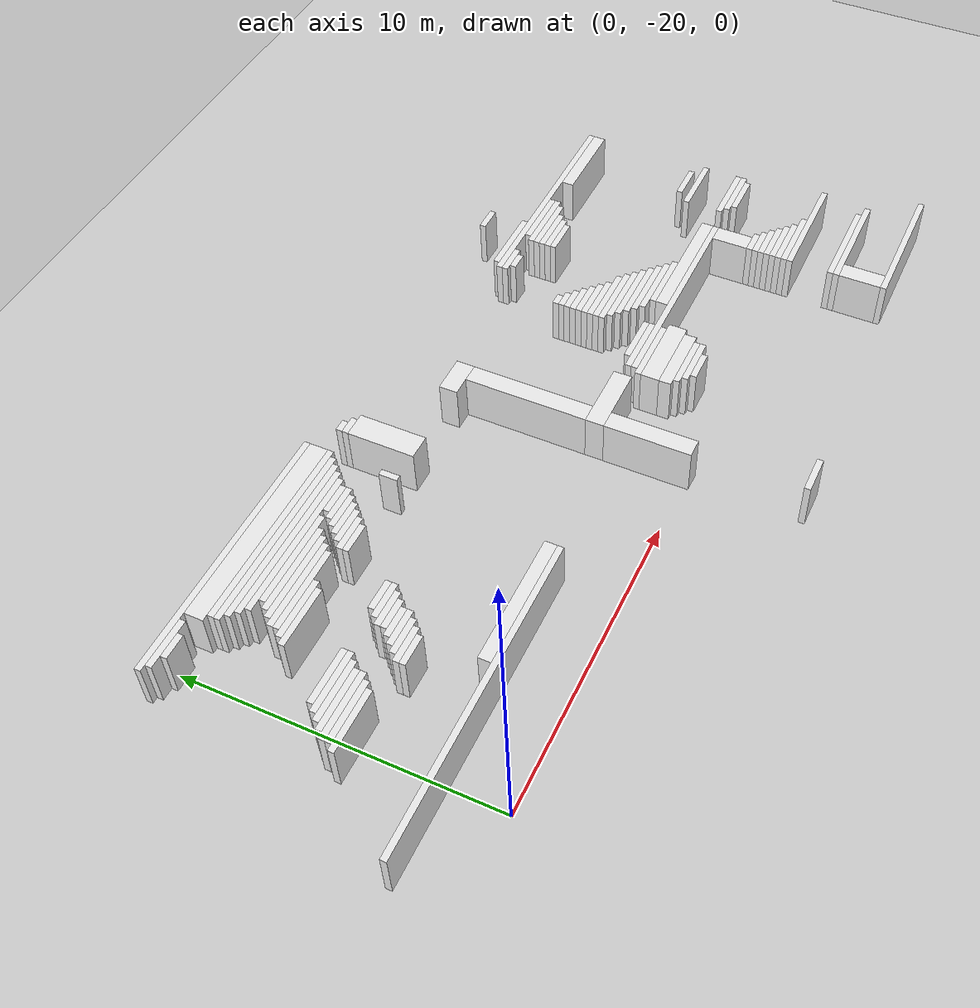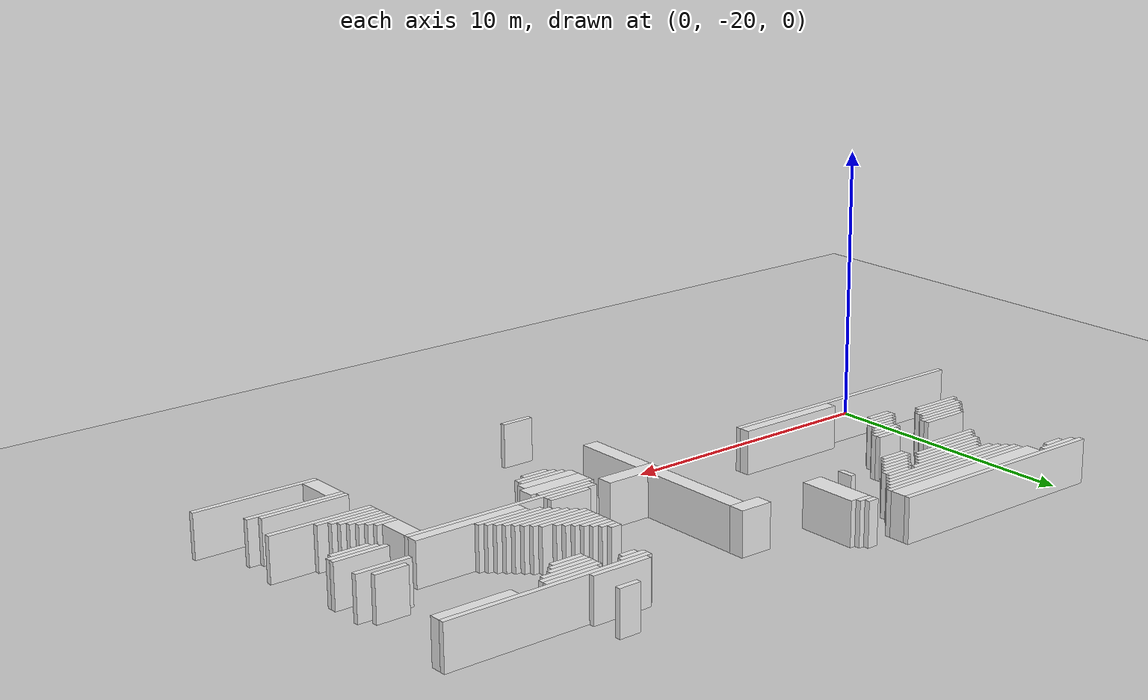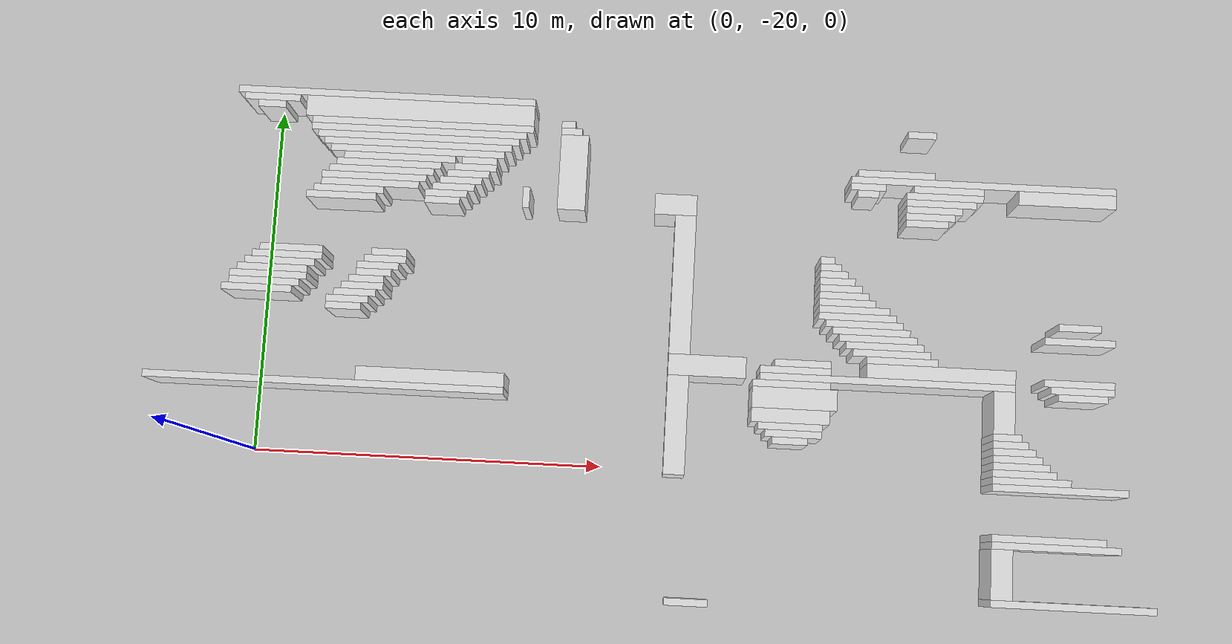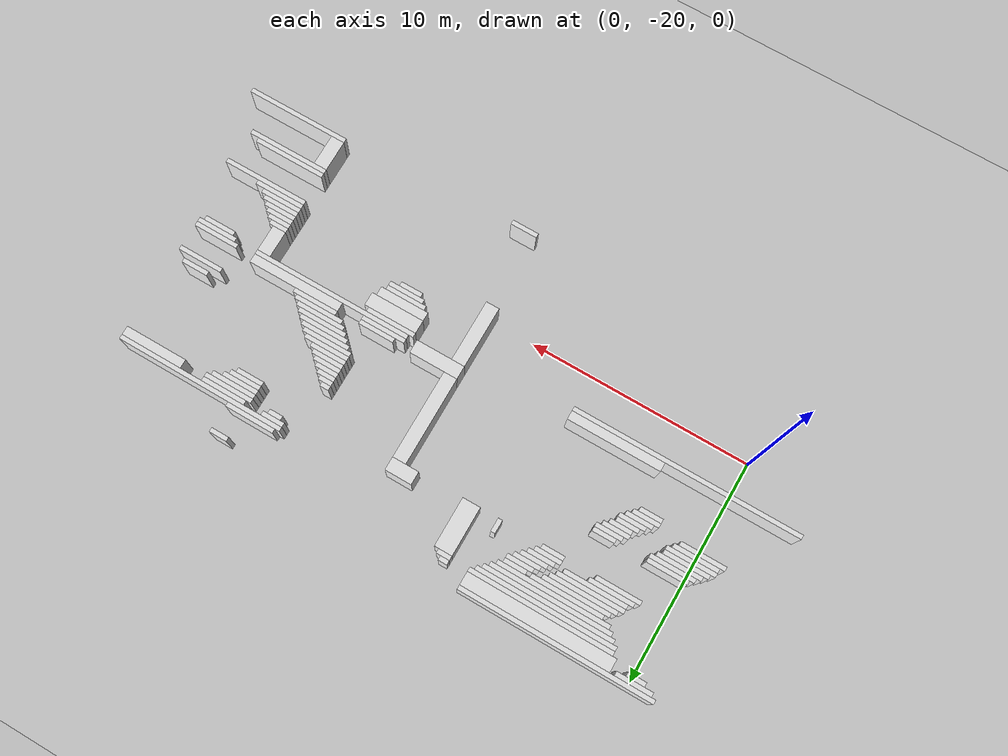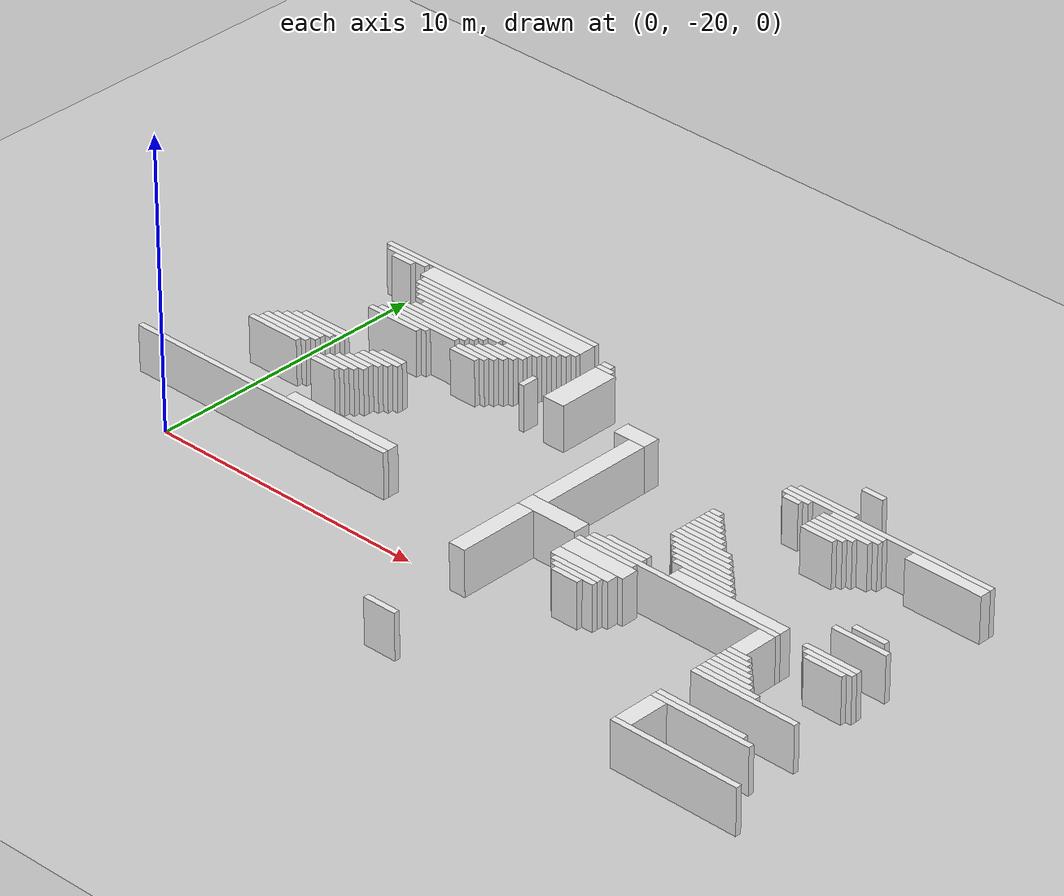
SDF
<sdf version="1.7">
 <world name="default">
  <model name="ground_plane">
   <static>1</static>
   <link name="link">
    <collision name="collision">
     <geometry><plane><normal>0 0 1</normal><size>120 120</size></plane></geometry>
    </collision>
    <visual name="visual">
     <geometry><plane><normal>0 0 1</normal><size>120 120</size></plane></geometry>
     <material>
      <script><uri>file://media/materials/scripts/gazebo.material</uri><name>Gazebo/Grey</name></script>
     </material>
    </visual>
   </link>
  </model>
  <model name="random_complex_02_model">
   <static>1</static>
   <link name="obs_2348">
    <pose>3.3000 -9.7000 0.8000 0 0 0</pose>
    <collision name="obs_2348_col"><geometry><box><size>8.6000 0.2000 1.6000</size></box></geometry></collision>
    <visual name="obs_2348_vis">
     <geometry><box><size>8.6000 0.2000 1.6000</size></box></geometry>
     <material>
      <script><uri>file://media/materials/scripts/gazebo.material</uri><name>Gazebo/White</name></script>
     </material>
    </visual>
   </link>
   <link name="obs_2354">
    <pose>0.0000 -9.9000 0.8000 0 0 0</pose>
    <collision name="obs_2354_col"><geometry><box><size>1.6000 0.2000 1.6000</size></box></geometry></collision>
    <visual name="obs_2354_vis">
     <geometry><box><size>1.6000 0.2000 1.6000</size></box></geometry>
     <material>
      <script><uri>file://media/materials/scripts/gazebo.material</uri><name>Gazebo/White</name></script>
     </material>
    </visual>
   </link>
   <link name="obs_2360">
    <pose>0.0000 -10.1000 0.8000 0 0 0</pose>
    <collision name="obs_2360_col"><geometry><box><size>0.8000 0.2000 1.6000</size></box></geometry></collision>
    <visual name="obs_2360_vis">
     <geometry><box><size>0.8000 0.2000 1.6000</size></box></geometry>
     <material>
      <script><uri>file://media/materials/scripts/gazebo.material</uri><name>Gazebo/White</name></script>
     </material>
    </visual>
   </link>
   <link name="obs_2361">
    <pose>18.8000 -10.1000 0.8000 0 0 0</pose>
    <collision name="obs_2361_col"><geometry><box><size>0.8000 0.2000 1.6000</size></box></geometry></collision>
    <visual name="obs_2361_vis">
     <geometry><box><size>0.8000 0.2000 1.6000</size></box></geometry>
     <material>
      <script><uri>file://media/materials/scripts/gazebo.material</uri><name>Gazebo/White</name></script>
     </material>
    </visual>
   </link>
   <link name="obs_2363">
    <pose>4.3000 -10.1000 0.8000 0 0 0</pose>
    <collision name="obs_2363_col"><geometry><box><size>6.6000 0.6000 1.6000</size></box></geometry></collision>
    <visual name="obs_2363_vis">
     <geometry><box><size>6.6000 0.6000 1.6000</size></box></geometry>
     <material>
      <script><uri>file://media/materials/scripts/gazebo.material</uri><name>Gazebo/White</name></script>
     </material>
    </visual>
   </link>
   <link name="obs_2366">
    <pose>8.6000 -10.3000 0.8000 0 0 0</pose>
    <collision name="obs_2366_col"><geometry><box><size>0.4000 0.2000 1.6000</size></box></geometry></collision>
    <visual name="obs_2366_vis">
     <geometry><box><size>0.4000 0.2000 1.6000</size></box></geometry>
     <material>
      <script><uri>file://media/materials/scripts/gazebo.material</uri><name>Gazebo/White</name></script>
     </material>
    </visual>
   </link>
   <link name="obs_2373">
    <pose>4.4000 -10.5000 0.8000 0 0 0</pose>
    <collision name="obs_2373_col"><geometry><box><size>6.4000 0.2000 1.6000</size></box></geometry></collision>
    <visual name="obs_2373_vis">
     <geometry><box><size>6.4000 0.2000 1.6000</size></box></geometry>
     <material>
      <script><uri>file://media/materials/scripts/gazebo.material</uri><name>Gazebo/White</name></script>
     </material>
    </visual>
   </link>
   <link name="obs_2374">
    <pose>8.7000 -10.5000 0.8000 0 0 0</pose>
    <collision name="obs_2374_col"><geometry><box><size>0.6000 0.2000 1.6000</size></box></geometry></collision>
    <visual name="obs_2374_vis">
     <geometry><box><size>0.6000 0.2000 1.6000</size></box></geometry>
     <material>
      <script><uri>file://media/materials/scripts/gazebo.material</uri><name>Gazebo/White</name></script>
     </material>
    </visual>
   </link>
   <link name="obs_2380">
    <pose>4.3000 -10.7000 0.8000 0 0 0</pose>
    <collision name="obs_2380_col"><geometry><box><size>6.2000 0.2000 1.6000</size></box></geometry></collision>
    <visual name="obs_2380_vis">
     <geometry><box><size>6.2000 0.2000 1.6000</size></box></geometry>
     <material>
      <script><uri>file://media/materials/scripts/gazebo.material</uri><name>Gazebo/White</name></script>
     </material>
    </visual>
   </link>
   <link name="obs_2384">
    <pose>4.3000 -10.9000 0.8000 0 0 0</pose>
    <collision name="obs_2384_col"><geometry><box><size>5.8000 0.2000 1.6000</size></box></geometry></collision>
    <visual name="obs_2384_vis">
     <geometry><box><size>5.8000 0.2000 1.6000</size></box></geometry>
     <material>
      <script><uri>file://media/materials/scripts/gazebo.material</uri><name>Gazebo/White</name></script>
     </material>
    </visual>
   </link>
   <link name="obs_2391">
    <pose>4.3000 -11.1000 0.8000 0 0 0</pose>
    <collision name="obs_2391_col"><geometry><box><size>5.4000 0.2000 1.6000</size></box></geometry></collision>
    <visual name="obs_2391_vis">
     <geometry><box><size>5.4000 0.2000 1.6000</size></box></geometry>
     <material>
      <script><uri>file://media/materials/scripts/gazebo.material</uri><name>Gazebo/White</name></script>
     </material>
    </visual>
   </link>
   <link name="obs_2396">
    <pose>4.3000 -11.3000 0.8000 0 0 0</pose>
    <collision name="obs_2396_col"><geometry><box><size>5.0000 0.2000 1.6000</size></box></geometry></collision>
    <visual name="obs_2396_vis">
     <geometry><box><size>5.0000 0.2000 1.6000</size></box></geometry>
     <material>
      <script><uri>file://media/materials/scripts/gazebo.material</uri><name>Gazebo/White</name></script>
     </material>
    </visual>
   </link>
   <link name="obs_2397">
    <pose>18.1000 -11.3000 0.8000 0 0 0</pose>
    <collision name="obs_2397_col"><geometry><box><size>2.2000 0.2000 1.6000</size></box></geometry></collision>
    <visual name="obs_2397_vis">
     <geometry><box><size>2.2000 0.2000 1.6000</size></box></geometry>
     <material>
      <script><uri>file://media/materials/scripts/gazebo.material</uri><name>Gazebo/White</name></script>
     </material>
    </visual>
   </link>
   <link name="obs_2403">
    <pose>3.8000 -11.5000 0.8000 0 0 0</pose>
    <collision name="obs_2403_col"><geometry><box><size>3.2000 0.2000 1.6000</size></box></geometry></collision>
    <visual name="obs_2403_vis">
     <geometry><box><size>3.2000 0.2000 1.6000</size></box></geometry>
     <material>
      <script><uri>file://media/materials/scripts/gazebo.material</uri><name>Gazebo/White</name></script>
     </material>
    </visual>
   </link>
   <link name="obs_2404">
    <pose>6.1000 -11.5000 0.8000 0 0 0</pose>
    <collision name="obs_2404_col"><geometry><box><size>1.0000 0.2000 1.6000</size></box></geometry></collision>
    <visual name="obs_2404_vis">
     <geometry><box><size>1.0000 0.2000 1.6000</size></box></geometry>
     <material>
      <script><uri>file://media/materials/scripts/gazebo.material</uri><name>Gazebo/White</name></script>
     </material>
    </visual>
   </link>
   <link name="obs_2405">
    <pose>20.6000 -11.5000 0.8000 0 0 0</pose>
    <collision name="obs_2405_col"><geometry><box><size>7.6000 0.2000 1.6000</size></box></geometry></collision>
    <visual name="obs_2405_vis">
     <geometry><box><size>7.6000 0.2000 1.6000</size></box></geometry>
     <material>
      <script><uri>file://media/materials/scripts/gazebo.material</uri><name>Gazebo/White</name></script>
     </material>
    </visual>
   </link>
   <link name="obs_2410">
    <pose>3.5000 -11.7000 0.8000 0 0 0</pose>
    <collision name="obs_2410_col"><geometry><box><size>3.0000 0.2000 1.6000</size></box></geometry></collision>
    <visual name="obs_2410_vis">
     <geometry><box><size>3.0000 0.2000 1.6000</size></box></geometry>
     <material>
      <script><uri>file://media/materials/scripts/gazebo.material</uri><name>Gazebo/White</name></script>
     </material>
    </visual>
   </link>
   <link name="obs_2411">
    <pose>6.0000 -11.7000 0.8000 0 0 0</pose>
    <collision name="obs_2411_col"><geometry><box><size>1.2000 0.2000 1.6000</size></box></geometry></collision>
    <visual name="obs_2411_vis">
     <geometry><box><size>1.2000 0.2000 1.6000</size></box></geometry>
     <material>
      <script><uri>file://media/materials/scripts/gazebo.material</uri><name>Gazebo/White</name></script>
     </material>
    </visual>
   </link>
   <link name="obs_2412">
    <pose>17.3000 -11.7000 0.8000 0 0 0</pose>
    <collision name="obs_2412_col"><geometry><box><size>1.0000 0.2000 1.6000</size></box></geometry></collision>
    <visual name="obs_2412_vis">
     <geometry><box><size>1.0000 0.2000 1.6000</size></box></geometry>
     <material>
      <script><uri>file://media/materials/scripts/gazebo.material</uri><name>Gazebo/White</name></script>
     </material>
    </visual>
   </link>
   <link name="obs_2413">
    <pose>19.6000 -11.7000 0.8000 0 0 0</pose>
    <collision name="obs_2413_col"><geometry><box><size>2.0000 0.2000 1.6000</size></box></geometry></collision>
    <visual name="obs_2413_vis">
     <geometry><box><size>2.0000 0.2000 1.6000</size></box></geometry>
     <material>
      <script><uri>file://media/materials/scripts/gazebo.material</uri><name>Gazebo/White</name></script>
     </material>
    </visual>
   </link>
   <link name="obs_2415">
    <pose>23.0000 -11.8000 0.8000 0 0 0</pose>
    <collision name="obs_2415_col"><geometry><box><size>2.8000 0.4000 1.6000</size></box></geometry></collision>
    <visual name="obs_2415_vis">
     <geometry><box><size>2.8000 0.4000 1.6000</size></box></geometry>
     <material>
      <script><uri>file://media/materials/scripts/gazebo.material</uri><name>Gazebo/White</name></script>
     </material>
    </visual>
   </link>
   <link name="obs_2418">
    <pose>3.3000 -11.9000 0.8000 0 0 0</pose>
    <collision name="obs_2418_col"><geometry><box><size>3.0000 0.2000 1.6000</size></box></geometry></collision>
    <visual name="obs_2418_vis">
     <geometry><box><size>3.0000 0.2000 1.6000</size></box></geometry>
     <material>
      <script><uri>file://media/materials/scripts/gazebo.material</uri><name>Gazebo/White</name></script>
     </material>
    </visual>
   </link>
   <link name="obs_2419">
    <pose>5.8000 -11.9000 0.8000 0 0 0</pose>
    <collision name="obs_2419_col"><geometry><box><size>1.2000 0.2000 1.6000</size></box></geometry></collision>
    <visual name="obs_2419_vis">
     <geometry><box><size>1.2000 0.2000 1.6000</size></box></geometry>
     <material>
      <script><uri>file://media/materials/scripts/gazebo.material</uri><name>Gazebo/White</name></script>
     </material>
    </visual>
   </link>
   <link name="obs_2420">
    <pose>17.3000 -11.9000 0.8000 0 0 0</pose>
    <collision name="obs_2420_col"><geometry><box><size>0.6000 0.2000 1.6000</size></box></geometry></collision>
    <visual name="obs_2420_vis">
     <geometry><box><size>0.6000 0.2000 1.6000</size></box></geometry>
     <material>
      <script><uri>file://media/materials/scripts/gazebo.material</uri><name>Gazebo/White</name></script>
     </material>
    </visual>
   </link>
   <link name="obs_2421">
    <pose>19.5000 -11.9000 0.8000 0 0 0</pose>
    <collision name="obs_2421_col"><geometry><box><size>2.2000 0.2000 1.6000</size></box></geometry></collision>
    <visual name="obs_2421_vis">
     <geometry><box><size>2.2000 0.2000 1.6000</size></box></geometry>
     <material>
      <script><uri>file://media/materials/scripts/gazebo.material</uri><name>Gazebo/White</name></script>
     </material>
    </visual>
   </link>
   <link name="obs_2427">
    <pose>3.1000 -12.1000 0.8000 0 0 0</pose>
    <collision name="obs_2427_col"><geometry><box><size>3.0000 0.2000 1.6000</size></box></geometry></collision>
    <visual name="obs_2427_vis">
     <geometry><box><size>3.0000 0.2000 1.6000</size></box></geometry>
     <material>
      <script><uri>file://media/materials/scripts/gazebo.material</uri><name>Gazebo/White</name></script>
     </material>
    </visual>
   </link>
   <link name="obs_2428">
    <pose>5.6000 -12.1000 0.8000 0 0 0</pose>
    <collision name="obs_2428_col"><geometry><box><size>1.2000 0.2000 1.6000</size></box></geometry></collision>
    <visual name="obs_2428_vis">
     <geometry><box><size>1.2000 0.2000 1.6000</size></box></geometry>
     <material>
      <script><uri>file://media/materials/scripts/gazebo.material</uri><name>Gazebo/White</name></script>
     </material>
    </visual>
   </link>
   <link name="obs_2429">
    <pose>19.4000 -12.1000 0.8000 0 0 0</pose>
    <collision name="obs_2429_col"><geometry><box><size>2.0000 0.2000 1.6000</size></box></geometry></collision>
    <visual name="obs_2429_vis">
     <geometry><box><size>2.0000 0.2000 1.6000</size></box></geometry>
     <material>
      <script><uri>file://media/materials/scripts/gazebo.material</uri><name>Gazebo/White</name></script>
     </material>
    </visual>
   </link>
   <link name="obs_2435">
    <pose>3.0000 -12.3000 0.8000 0 0 0</pose>
    <collision name="obs_2435_col"><geometry><box><size>2.8000 0.2000 1.6000</size></box></geometry></collision>
    <visual name="obs_2435_vis">
     <geometry><box><size>2.8000 0.2000 1.6000</size></box></geometry>
     <material>
      <script><uri>file://media/materials/scripts/gazebo.material</uri><name>Gazebo/White</name></script>
     </material>
    </visual>
   </link>
   <link name="obs_2436">
    <pose>5.4000 -12.3000 0.8000 0 0 0</pose>
    <collision name="obs_2436_col"><geometry><box><size>1.2000 0.2000 1.6000</size></box></geometry></collision>
    <visual name="obs_2436_vis">
     <geometry><box><size>1.2000 0.2000 1.6000</size></box></geometry>
     <material>
      <script><uri>file://media/materials/scripts/gazebo.material</uri><name>Gazebo/White</name></script>
     </material>
    </visual>
   </link>
   <link name="obs_2437">
    <pose>19.2000 -12.3000 0.8000 0 0 0</pose>
    <collision name="obs_2437_col"><geometry><box><size>1.6000 0.2000 1.6000</size></box></geometry></collision>
    <visual name="obs_2437_vis">
     <geometry><box><size>1.6000 0.2000 1.6000</size></box></geometry>
     <material>
      <script><uri>file://media/materials/scripts/gazebo.material</uri><name>Gazebo/White</name></script>
     </material>
    </visual>
   </link>
   <link name="obs_2442">
    <pose>2.4000 -12.5000 0.8000 0 0 0</pose>
    <collision name="obs_2442_col"><geometry><box><size>2.0000 0.2000 1.6000</size></box></geometry></collision>
    <visual name="obs_2442_vis">
     <geometry><box><size>2.0000 0.2000 1.6000</size></box></geometry>
     <material>
      <script><uri>file://media/materials/scripts/gazebo.material</uri><name>Gazebo/White</name></script>
     </material>
    </visual>
   </link>
   <link name="obs_2443">
    <pose>5.2000 -12.5000 0.8000 0 0 0</pose>
    <collision name="obs_2443_col"><geometry><box><size>1.2000 0.2000 1.6000</size></box></geometry></collision>
    <visual name="obs_2443_vis">
     <geometry><box><size>1.2000 0.2000 1.6000</size></box></geometry>
     <material>
      <script><uri>file://media/materials/scripts/gazebo.material</uri><name>Gazebo/White</name></script>
     </material>
    </visual>
   </link>
   <link name="obs_2444">
    <pose>19.1000 -12.5000 0.8000 0 0 0</pose>
    <collision name="obs_2444_col"><geometry><box><size>1.4000 0.2000 1.6000</size></box></geometry></collision>
    <visual name="obs_2444_vis">
     <geometry><box><size>1.4000 0.2000 1.6000</size></box></geometry>
     <material>
      <script><uri>file://media/materials/scripts/gazebo.material</uri><name>Gazebo/White</name></script>
     </material>
    </visual>
   </link>
   <link name="obs_2448">
    <pose>8.8000 -11.7000 0.8000 0 0 0</pose>
    <collision name="obs_2448_col"><geometry><box><size>0.8000 2.2000 1.6000</size></box></geometry></collision>
    <visual name="obs_2448_vis">
     <geometry><box><size>0.8000 2.2000 1.6000</size></box></geometry>
     <material>
      <script><uri>file://media/materials/scripts/gazebo.material</uri><name>Gazebo/White</name></script>
     </material>
    </visual>
   </link>
   <link name="obs_2450">
    <pose>7.5000 -12.5000 0.8000 0 0 0</pose>
    <collision name="obs_2450_col"><geometry><box><size>0.2000 0.6000 1.6000</size></box></geometry></collision>
    <visual name="obs_2450_vis">
     <geometry><box><size>0.2000 0.6000 1.6000</size></box></geometry>
     <material>
      <script><uri>file://media/materials/scripts/gazebo.material</uri><name>Gazebo/White</name></script>
     </material>
    </visual>
   </link>
   <link name="obs_2451">
    <pose>11.8000 -12.5000 0.8000 0 0 0</pose>
    <collision name="obs_2451_col"><geometry><box><size>1.2000 0.6000 1.6000</size></box></geometry></collision>
    <visual name="obs_2451_vis">
     <geometry><box><size>1.2000 0.6000 1.6000</size></box></geometry>
     <material>
      <script><uri>file://media/materials/scripts/gazebo.material</uri><name>Gazebo/White</name></script>
     </material>
    </visual>
   </link>
   <link name="obs_2453">
    <pose>2.2000 -12.7000 0.8000 0 0 0</pose>
    <collision name="obs_2453_col"><geometry><box><size>2.0000 0.2000 1.6000</size></box></geometry></collision>
    <visual name="obs_2453_vis">
     <geometry><box><size>2.0000 0.2000 1.6000</size></box></geometry>
     <material>
      <script><uri>file://media/materials/scripts/gazebo.material</uri><name>Gazebo/White</name></script>
     </material>
    </visual>
   </link>
   <link name="obs_2454">
    <pose>5.1000 -12.7000 0.8000 0 0 0</pose>
    <collision name="obs_2454_col"><geometry><box><size>1.0000 0.2000 1.6000</size></box></geometry></collision>
    <visual name="obs_2454_vis">
     <geometry><box><size>1.0000 0.2000 1.6000</size></box></geometry>
     <material>
      <script><uri>file://media/materials/scripts/gazebo.material</uri><name>Gazebo/White</name></script>
     </material>
    </visual>
   </link>
   <link name="obs_2455">
    <pose>19.0000 -12.7000 0.8000 0 0 0</pose>
    <collision name="obs_2455_col"><geometry><box><size>1.2000 0.2000 1.6000</size></box></geometry></collision>
    <visual name="obs_2455_vis">
     <geometry><box><size>1.2000 0.2000 1.6000</size></box></geometry>
     <material>
      <script><uri>file://media/materials/scripts/gazebo.material</uri><name>Gazebo/White</name></script>
     </material>
    </visual>
   </link>
   <link name="obs_2498">
    <pose>16.2000 -13.9000 0.8000 0 0 0</pose>
    <collision name="obs_2498_col"><geometry><box><size>0.4000 0.2000 1.6000</size></box></geometry></collision>
    <visual name="obs_2498_vis">
     <geometry><box><size>0.4000 0.2000 1.6000</size></box></geometry>
     <material>
      <script><uri>file://media/materials/scripts/gazebo.material</uri><name>Gazebo/White</name></script>
     </material>
    </visual>
   </link>
   <link name="obs_2506">
    <pose>16.3000 -14.1000 0.8000 0 0 0</pose>
    <collision name="obs_2506_col"><geometry><box><size>0.6000 0.2000 1.6000</size></box></geometry></collision>
    <visual name="obs_2506_vis">
     <geometry><box><size>0.6000 0.2000 1.6000</size></box></geometry>
     <material>
      <script><uri>file://media/materials/scripts/gazebo.material</uri><name>Gazebo/White</name></script>
     </material>
    </visual>
   </link>
   <link name="obs_2515">
    <pose>0.9000 -14.3000 0.8000 0 0 0</pose>
    <collision name="obs_2515_col"><geometry><box><size>1.8000 0.2000 1.6000</size></box></geometry></collision>
    <visual name="obs_2515_vis">
     <geometry><box><size>1.8000 0.2000 1.6000</size></box></geometry>
     <material>
      <script><uri>file://media/materials/scripts/gazebo.material</uri><name>Gazebo/White</name></script>
     </material>
    </visual>
   </link>
   <link name="obs_2516">
    <pose>3.7000 -14.3000 0.8000 0 0 0</pose>
    <collision name="obs_2516_col"><geometry><box><size>1.0000 0.2000 1.6000</size></box></geometry></collision>
    <visual name="obs_2516_vis">
     <geometry><box><size>1.0000 0.2000 1.6000</size></box></geometry>
     <material>
      <script><uri>file://media/materials/scripts/gazebo.material</uri><name>Gazebo/White</name></script>
     </material>
    </visual>
   </link>
   <link name="obs_2517">
    <pose>16.4000 -14.3000 0.8000 0 0 0</pose>
    <collision name="obs_2517_col"><geometry><box><size>0.8000 0.2000 1.6000</size></box></geometry></collision>
    <visual name="obs_2517_vis">
     <geometry><box><size>0.8000 0.2000 1.6000</size></box></geometry>
     <material>
      <script><uri>file://media/materials/scripts/gazebo.material</uri><name>Gazebo/White</name></script>
     </material>
    </visual>
   </link>
   <link name="obs_2526">
    <pose>0.8000 -14.5000 0.8000 0 0 0</pose>
    <collision name="obs_2526_col"><geometry><box><size>2.0000 0.2000 1.6000</size></box></geometry></collision>
    <visual name="obs_2526_vis">
     <geometry><box><size>2.0000 0.2000 1.6000</size></box></geometry>
     <material>
      <script><uri>file://media/materials/scripts/gazebo.material</uri><name>Gazebo/White</name></script>
     </material>
    </visual>
   </link>
   <link name="obs_2527">
    <pose>3.6000 -14.5000 0.8000 0 0 0</pose>
    <collision name="obs_2527_col"><geometry><box><size>1.2000 0.2000 1.6000</size></box></geometry></collision>
    <visual name="obs_2527_vis">
     <geometry><box><size>1.2000 0.2000 1.6000</size></box></geometry>
     <material>
      <script><uri>file://media/materials/scripts/gazebo.material</uri><name>Gazebo/White</name></script>
     </material>
    </visual>
   </link>
   <link name="obs_2528">
    <pose>16.5000 -14.5000 0.8000 0 0 0</pose>
    <collision name="obs_2528_col"><geometry><box><size>1.0000 0.2000 1.6000</size></box></geometry></collision>
    <visual name="obs_2528_vis">
     <geometry><box><size>1.0000 0.2000 1.6000</size></box></geometry>
     <material>
      <script><uri>file://media/materials/scripts/gazebo.material</uri><name>Gazebo/White</name></script>
     </material>
    </visual>
   </link>
   <link name="obs_2534">
    <pose>0.6000 -14.7000 0.8000 0 0 0</pose>
    <collision name="obs_2534_col"><geometry><box><size>2.0000 0.2000 1.6000</size></box></geometry></collision>
    <visual name="obs_2534_vis">
     <geometry><box><size>2.0000 0.2000 1.6000</size></box></geometry>
     <material>
      <script><uri>file://media/materials/scripts/gazebo.material</uri><name>Gazebo/White</name></script>
     </material>
    </visual>
   </link>
   <link name="obs_2535">
    <pose>3.4000 -14.7000 0.8000 0 0 0</pose>
    <collision name="obs_2535_col"><geometry><box><size>1.2000 0.2000 1.6000</size></box></geometry></collision>
    <visual name="obs_2535_vis">
     <geometry><box><size>1.2000 0.2000 1.6000</size></box></geometry>
     <material>
      <script><uri>file://media/materials/scripts/gazebo.material</uri><name>Gazebo/White</name></script>
     </material>
    </visual>
   </link>
   <link name="obs_2536">
    <pose>16.6000 -14.7000 0.8000 0 0 0</pose>
    <collision name="obs_2536_col"><geometry><box><size>1.2000 0.2000 1.6000</size></box></geometry></collision>
    <visual name="obs_2536_vis">
     <geometry><box><size>1.2000 0.2000 1.6000</size></box></geometry>
     <material>
      <script><uri>file://media/materials/scripts/gazebo.material</uri><name>Gazebo/White</name></script>
     </material>
    </visual>
   </link>
   <link name="obs_2545">
    <pose>0.4000 -14.9000 0.8000 0 0 0</pose>
    <collision name="obs_2545_col"><geometry><box><size>2.0000 0.2000 1.6000</size></box></geometry></collision>
    <visual name="obs_2545_vis">
     <geometry><box><size>2.0000 0.2000 1.6000</size></box></geometry>
     <material>
      <script><uri>file://media/materials/scripts/gazebo.material</uri><name>Gazebo/White</name></script>
     </material>
    </visual>
   </link>
   <link name="obs_2546">
    <pose>3.3000 -14.9000 0.8000 0 0 0</pose>
    <collision name="obs_2546_col"><geometry><box><size>1.0000 0.2000 1.6000</size></box></geometry></collision>
    <visual name="obs_2546_vis">
     <geometry><box><size>1.0000 0.2000 1.6000</size></box></geometry>
     <material>
      <script><uri>file://media/materials/scripts/gazebo.material</uri><name>Gazebo/White</name></script>
     </material>
    </visual>
   </link>
   <link name="obs_2547">
    <pose>16.7000 -14.9000 0.8000 0 0 0</pose>
    <collision name="obs_2547_col"><geometry><box><size>1.4000 0.2000 1.6000</size></box></geometry></collision>
    <visual name="obs_2547_vis">
     <geometry><box><size>1.4000 0.2000 1.6000</size></box></geometry>
     <material>
      <script><uri>file://media/materials/scripts/gazebo.material</uri><name>Gazebo/White</name></script>
     </material>
    </visual>
   </link>
   <link name="obs_2555">
    <pose>0.3000 -15.1000 0.8000 0 0 0</pose>
    <collision name="obs_2555_col"><geometry><box><size>2.2000 0.2000 1.6000</size></box></geometry></collision>
    <visual name="obs_2555_vis">
     <geometry><box><size>2.2000 0.2000 1.6000</size></box></geometry>
     <material>
      <script><uri>file://media/materials/scripts/gazebo.material</uri><name>Gazebo/White</name></script>
     </material>
    </visual>
   </link>
   <link name="obs_2556">
    <pose>3.1000 -15.1000 0.8000 0 0 0</pose>
    <collision name="obs_2556_col"><geometry><box><size>1.0000 0.2000 1.6000</size></box></geometry></collision>
    <visual name="obs_2556_vis">
     <geometry><box><size>1.0000 0.2000 1.6000</size></box></geometry>
     <material>
      <script><uri>file://media/materials/scripts/gazebo.material</uri><name>Gazebo/White</name></script>
     </material>
    </visual>
   </link>
   <link name="obs_2557">
    <pose>16.8000 -15.1000 0.8000 0 0 0</pose>
    <collision name="obs_2557_col"><geometry><box><size>1.6000 0.2000 1.6000</size></box></geometry></collision>
    <visual name="obs_2557_vis">
     <geometry><box><size>1.6000 0.2000 1.6000</size></box></geometry>
     <material>
      <script><uri>file://media/materials/scripts/gazebo.material</uri><name>Gazebo/White</name></script>
     </material>
    </visual>
   </link>
   <link name="obs_2565">
    <pose>0.2000 -15.3000 0.8000 0 0 0</pose>
    <collision name="obs_2565_col"><geometry><box><size>2.0000 0.2000 1.6000</size></box></geometry></collision>
    <visual name="obs_2565_vis">
     <geometry><box><size>2.0000 0.2000 1.6000</size></box></geometry>
     <material>
      <script><uri>file://media/materials/scripts/gazebo.material</uri><name>Gazebo/White</name></script>
     </material>
    </visual>
   </link>
   <link name="obs_2566">
    <pose>3.0000 -15.3000 0.8000 0 0 0</pose>
    <collision name="obs_2566_col"><geometry><box><size>1.2000 0.2000 1.6000</size></box></geometry></collision>
    <visual name="obs_2566_vis">
     <geometry><box><size>1.2000 0.2000 1.6000</size></box></geometry>
     <material>
      <script><uri>file://media/materials/scripts/gazebo.material</uri><name>Gazebo/White</name></script>
     </material>
    </visual>
   </link>
   <link name="obs_2567">
    <pose>17.0000 -15.3000 0.8000 0 0 0</pose>
    <collision name="obs_2567_col"><geometry><box><size>2.0000 0.2000 1.6000</size></box></geometry></collision>
    <visual name="obs_2567_vis">
     <geometry><box><size>2.0000 0.2000 1.6000</size></box></geometry>
     <material>
      <script><uri>file://media/materials/scripts/gazebo.material</uri><name>Gazebo/White</name></script>
     </material>
    </visual>
   </link>
   <link name="obs_2576">
    <pose>0.0000 -15.5000 0.8000 0 0 0</pose>
    <collision name="obs_2576_col"><geometry><box><size>2.0000 0.2000 1.6000</size></box></geometry></collision>
    <visual name="obs_2576_vis">
     <geometry><box><size>2.0000 0.2000 1.6000</size></box></geometry>
     <material>
      <script><uri>file://media/materials/scripts/gazebo.material</uri><name>Gazebo/White</name></script>
     </material>
    </visual>
   </link>
   <link name="obs_2577">
    <pose>2.8000 -15.5000 0.8000 0 0 0</pose>
    <collision name="obs_2577_col"><geometry><box><size>1.2000 0.2000 1.6000</size></box></geometry></collision>
    <visual name="obs_2577_vis">
     <geometry><box><size>1.2000 0.2000 1.6000</size></box></geometry>
     <material>
      <script><uri>file://media/materials/scripts/gazebo.material</uri><name>Gazebo/White</name></script>
     </material>
    </visual>
   </link>
   <link name="obs_2578">
    <pose>17.1000 -15.5000 0.8000 0 0 0</pose>
    <collision name="obs_2578_col"><geometry><box><size>2.2000 0.2000 1.6000</size></box></geometry></collision>
    <visual name="obs_2578_vis">
     <geometry><box><size>2.2000 0.2000 1.6000</size></box></geometry>
     <material>
      <script><uri>file://media/materials/scripts/gazebo.material</uri><name>Gazebo/White</name></script>
     </material>
    </visual>
   </link>
   <link name="obs_2579">
    <pose>23.4000 -15.5000 0.8000 0 0 0</pose>
    <collision name="obs_2579_col"><geometry><box><size>1.2000 0.2000 1.6000</size></box></geometry></collision>
    <visual name="obs_2579_vis">
     <geometry><box><size>1.2000 0.2000 1.6000</size></box></geometry>
     <material>
      <script><uri>file://media/materials/scripts/gazebo.material</uri><name>Gazebo/White</name></script>
     </material>
    </visual>
   </link>
   <link name="obs_2589">
    <pose>2.6000 -15.7000 0.8000 0 0 0</pose>
    <collision name="obs_2589_col"><geometry><box><size>1.2000 0.2000 1.6000</size></box></geometry></collision>
    <visual name="obs_2589_vis">
     <geometry><box><size>1.2000 0.2000 1.6000</size></box></geometry>
     <material>
      <script><uri>file://media/materials/scripts/gazebo.material</uri><name>Gazebo/White</name></script>
     </material>
    </visual>
   </link>
   <link name="obs_2590">
    <pose>17.3000 -15.7000 0.8000 0 0 0</pose>
    <collision name="obs_2590_col"><geometry><box><size>2.2000 0.2000 1.6000</size></box></geometry></collision>
    <visual name="obs_2590_vis">
     <geometry><box><size>2.2000 0.2000 1.6000</size></box></geometry>
     <material>
      <script><uri>file://media/materials/scripts/gazebo.material</uri><name>Gazebo/White</name></script>
     </material>
    </visual>
   </link>
   <link name="obs_2602">
    <pose>2.5000 -15.9000 0.8000 0 0 0</pose>
    <collision name="obs_2602_col"><geometry><box><size>1.0000 0.2000 1.6000</size></box></geometry></collision>
    <visual name="obs_2602_vis">
     <geometry><box><size>1.0000 0.2000 1.6000</size></box></geometry>
     <material>
      <script><uri>file://media/materials/scripts/gazebo.material</uri><name>Gazebo/White</name></script>
     </material>
    </visual>
   </link>
   <link name="obs_2603">
    <pose>17.5000 -15.9000 0.8000 0 0 0</pose>
    <collision name="obs_2603_col"><geometry><box><size>2.2000 0.2000 1.6000</size></box></geometry></collision>
    <visual name="obs_2603_vis">
     <geometry><box><size>2.2000 0.2000 1.6000</size></box></geometry>
     <material>
      <script><uri>file://media/materials/scripts/gazebo.material</uri><name>Gazebo/White</name></script>
     </material>
    </visual>
   </link>
   <link name="obs_2604">
    <pose>23.4000 -15.9000 0.8000 0 0 0</pose>
    <collision name="obs_2604_col"><geometry><box><size>2.0000 0.2000 1.6000</size></box></geometry></collision>
    <visual name="obs_2604_vis">
     <geometry><box><size>2.0000 0.2000 1.6000</size></box></geometry>
     <material>
      <script><uri>file://media/materials/scripts/gazebo.material</uri><name>Gazebo/White</name></script>
     </material>
    </visual>
   </link>
   <link name="obs_2611">
    <pose>17.7000 -16.1000 0.8000 0 0 0</pose>
    <collision name="obs_2611_col"><geometry><box><size>2.2000 0.2000 1.6000</size></box></geometry></collision>
    <visual name="obs_2611_vis">
     <geometry><box><size>2.2000 0.2000 1.6000</size></box></geometry>
     <material>
      <script><uri>file://media/materials/scripts/gazebo.material</uri><name>Gazebo/White</name></script>
     </material>
    </visual>
   </link>
   <link name="obs_2617">
    <pose>17.9000 -16.3000 0.8000 0 0 0</pose>
    <collision name="obs_2617_col"><geometry><box><size>2.2000 0.2000 1.6000</size></box></geometry></collision>
    <visual name="obs_2617_vis">
     <geometry><box><size>2.2000 0.2000 1.6000</size></box></geometry>
     <material>
      <script><uri>file://media/materials/scripts/gazebo.material</uri><name>Gazebo/White</name></script>
     </material>
    </visual>
   </link>
   <link name="obs_2624">
    <pose>18.1000 -16.5000 0.8000 0 0 0</pose>
    <collision name="obs_2624_col"><geometry><box><size>2.2000 0.2000 1.6000</size></box></geometry></collision>
    <visual name="obs_2624_vis">
     <geometry><box><size>2.2000 0.2000 1.6000</size></box></geometry>
     <material>
      <script><uri>file://media/materials/scripts/gazebo.material</uri><name>Gazebo/White</name></script>
     </material>
    </visual>
   </link>
   <link name="obs_2628">
    <pose>12.1000 -14.8000 0.8000 0 0 0</pose>
    <collision name="obs_2628_col"><geometry><box><size>0.6000 4.0000 1.6000</size></box></geometry></collision>
    <visual name="obs_2628_vis">
     <geometry><box><size>0.6000 4.0000 1.6000</size></box></geometry>
     <material>
      <script><uri>file://media/materials/scripts/gazebo.material</uri><name>Gazebo/White</name></script>
     </material>
    </visual>
   </link>
   <link name="obs_2632">
    <pose>18.4000 -16.7000 0.8000 0 0 0</pose>
    <collision name="obs_2632_col"><geometry><box><size>2.0000 0.2000 1.6000</size></box></geometry></collision>
    <visual name="obs_2632_vis">
     <geometry><box><size>2.0000 0.2000 1.6000</size></box></geometry>
     <material>
      <script><uri>file://media/materials/scripts/gazebo.material</uri><name>Gazebo/White</name></script>
     </material>
    </visual>
   </link>
   <link name="obs_2638">
    <pose>15.6000 -16.9000 0.8000 0 0 0</pose>
    <collision name="obs_2638_col"><geometry><box><size>1.6000 0.2000 1.6000</size></box></geometry></collision>
    <visual name="obs_2638_vis">
     <geometry><box><size>1.6000 0.2000 1.6000</size></box></geometry>
     <material>
      <script><uri>file://media/materials/scripts/gazebo.material</uri><name>Gazebo/White</name></script>
     </material>
    </visual>
   </link>
   <link name="obs_2641">
    <pose>19.5000 -17.0000 0.8000 0 0 0</pose>
    <collision name="obs_2641_col"><geometry><box><size>4.2000 0.4000 1.6000</size></box></geometry></collision>
    <visual name="obs_2641_vis">
     <geometry><box><size>4.2000 0.4000 1.6000</size></box></geometry>
     <material>
      <script><uri>file://media/materials/scripts/gazebo.material</uri><name>Gazebo/White</name></script>
     </material>
    </visual>
   </link>
   <link name="obs_2644">
    <pose>15.4000 -17.1000 0.8000 0 0 0</pose>
    <collision name="obs_2644_col"><geometry><box><size>2.0000 0.2000 1.6000</size></box></geometry></collision>
    <visual name="obs_2644_vis">
     <geometry><box><size>2.0000 0.2000 1.6000</size></box></geometry>
     <material>
      <script><uri>file://media/materials/scripts/gazebo.material</uri><name>Gazebo/White</name></script>
     </material>
    </visual>
   </link>
   <link name="obs_2645">
    <pose>23.4000 -17.1000 0.8000 0 0 0</pose>
    <collision name="obs_2645_col"><geometry><box><size>2.0000 0.2000 1.6000</size></box></geometry></collision>
    <visual name="obs_2645_vis">
     <geometry><box><size>2.0000 0.2000 1.6000</size></box></geometry>
     <material>
      <script><uri>file://media/materials/scripts/gazebo.material</uri><name>Gazebo/White</name></script>
     </material>
    </visual>
   </link>
   <link name="obs_2648">
    <pose>12.9000 -17.1000 0.8000 0 0 0</pose>
    <collision name="obs_2648_col"><geometry><box><size>2.2000 0.6000 1.6000</size></box></geometry></collision>
    <visual name="obs_2648_vis">
     <geometry><box><size>2.2000 0.6000 1.6000</size></box></geometry>
     <material>
      <script><uri>file://media/materials/scripts/gazebo.material</uri><name>Gazebo/White</name></script>
     </material>
    </visual>
   </link>
   <link name="obs_2650">
    <pose>18.0000 -17.3000 0.8000 0 0 0</pose>
    <collision name="obs_2650_col"><geometry><box><size>7.2000 0.2000 1.6000</size></box></geometry></collision>
    <visual name="obs_2650_vis">
     <geometry><box><size>7.2000 0.2000 1.6000</size></box></geometry>
     <material>
      <script><uri>file://media/materials/scripts/gazebo.material</uri><name>Gazebo/White</name></script>
     </material>
    </visual>
   </link>
   <link name="obs_2651">
    <pose>23.5000 -17.3000 0.8000 0 0 0</pose>
    <collision name="obs_2651_col"><geometry><box><size>1.8000 0.2000 1.6000</size></box></geometry></collision>
    <visual name="obs_2651_vis">
     <geometry><box><size>1.8000 0.2000 1.6000</size></box></geometry>
     <material>
      <script><uri>file://media/materials/scripts/gazebo.material</uri><name>Gazebo/White</name></script>
     </material>
    </visual>
   </link>
   <link name="obs_2656">
    <pose>15.3000 -17.5000 0.8000 0 0 0</pose>
    <collision name="obs_2656_col"><geometry><box><size>2.2000 0.2000 1.6000</size></box></geometry></collision>
    <visual name="obs_2656_vis">
     <geometry><box><size>2.2000 0.2000 1.6000</size></box></geometry>
     <material>
      <script><uri>file://media/materials/scripts/gazebo.material</uri><name>Gazebo/White</name></script>
     </material>
    </visual>
   </link>
   <link name="obs_2657">
    <pose>23.5000 -17.5000 0.8000 0 0 0</pose>
    <collision name="obs_2657_col"><geometry><box><size>1.4000 0.2000 1.6000</size></box></geometry></collision>
    <visual name="obs_2657_vis">
     <geometry><box><size>1.4000 0.2000 1.6000</size></box></geometry>
     <material>
      <script><uri>file://media/materials/scripts/gazebo.material</uri><name>Gazebo/White</name></script>
     </material>
    </visual>
   </link>
   <link name="obs_2675">
    <pose>5.1000 -17.8000 0.8000 0 0 0</pose>
    <collision name="obs_2675_col"><geometry><box><size>4.2000 0.4000 1.6000</size></box></geometry></collision>
    <visual name="obs_2675_vis">
     <geometry><box><size>4.2000 0.4000 1.6000</size></box></geometry>
     <material>
      <script><uri>file://media/materials/scripts/gazebo.material</uri><name>Gazebo/White</name></script>
     </material>
    </visual>
   </link>
   <link name="obs_2683">
    <pose>15.4000 -17.9000 0.8000 0 0 0</pose>
    <collision name="obs_2683_col"><geometry><box><size>2.4000 0.6000 1.6000</size></box></geometry></collision>
    <visual name="obs_2683_vis">
     <geometry><box><size>2.4000 0.6000 1.6000</size></box></geometry>
     <material>
      <script><uri>file://media/materials/scripts/gazebo.material</uri><name>Gazebo/White</name></script>
     </material>
    </visual>
   </link>
   <link name="obs_2688">
    <pose>2.1000 -18.1000 0.8000 0 0 0</pose>
    <collision name="obs_2688_col"><geometry><box><size>10.2000 0.2000 1.6000</size></box></geometry></collision>
    <visual name="obs_2688_vis">
     <geometry><box><size>10.2000 0.2000 1.6000</size></box></geometry>
     <material>
      <script><uri>file://media/materials/scripts/gazebo.material</uri><name>Gazebo/White</name></script>
     </material>
    </visual>
   </link>
   <link name="obs_2702">
    <pose>21.3000 -18.0000 0.8000 0 0 0</pose>
    <collision name="obs_2702_col"><geometry><box><size>0.6000 1.2000 1.6000</size></box></geometry></collision>
    <visual name="obs_2702_vis">
     <geometry><box><size>0.6000 1.2000 1.6000</size></box></geometry>
     <material>
      <script><uri>file://media/materials/scripts/gazebo.material</uri><name>Gazebo/White</name></script>
     </material>
    </visual>
   </link>
   <link name="obs_2703">
    <pose>15.3000 -18.4000 0.8000 0 0 0</pose>
    <collision name="obs_2703_col"><geometry><box><size>2.2000 0.4000 1.6000</size></box></geometry></collision>
    <visual name="obs_2703_vis">
     <geometry><box><size>2.2000 0.4000 1.6000</size></box></geometry>
     <material>
      <script><uri>file://media/materials/scripts/gazebo.material</uri><name>Gazebo/White</name></script>
     </material>
    </visual>
   </link>
   <link name="obs_2712">
    <pose>15.3000 -18.7000 0.8000 0 0 0</pose>
    <collision name="obs_2712_col"><geometry><box><size>1.8000 0.2000 1.6000</size></box></geometry></collision>
    <visual name="obs_2712_vis">
     <geometry><box><size>1.8000 0.2000 1.6000</size></box></geometry>
     <material>
      <script><uri>file://media/materials/scripts/gazebo.material</uri><name>Gazebo/White</name></script>
     </material>
    </visual>
   </link>
   <link name="obs_2713">
    <pose>21.4000 -18.7000 0.8000 0 0 0</pose>
    <collision name="obs_2713_col"><geometry><box><size>0.8000 0.2000 1.6000</size></box></geometry></collision>
    <visual name="obs_2713_vis">
     <geometry><box><size>0.8000 0.2000 1.6000</size></box></geometry>
     <material>
      <script><uri>file://media/materials/scripts/gazebo.material</uri><name>Gazebo/White</name></script>
     </material>
    </visual>
   </link>
   <link name="obs_2723">
    <pose>15.4000 -18.9000 0.8000 0 0 0</pose>
    <collision name="obs_2723_col"><geometry><box><size>1.6000 0.2000 1.6000</size></box></geometry></collision>
    <visual name="obs_2723_vis">
     <geometry><box><size>1.6000 0.2000 1.6000</size></box></geometry>
     <material>
      <script><uri>file://media/materials/scripts/gazebo.material</uri><name>Gazebo/White</name></script>
     </material>
    </visual>
   </link>
   <link name="obs_2724">
    <pose>21.5000 -18.9000 0.8000 0 0 0</pose>
    <collision name="obs_2724_col"><geometry><box><size>1.0000 0.2000 1.6000</size></box></geometry></collision>
    <visual name="obs_2724_vis">
     <geometry><box><size>1.0000 0.2000 1.6000</size></box></geometry>
     <material>
      <script><uri>file://media/materials/scripts/gazebo.material</uri><name>Gazebo/White</name></script>
     </material>
    </visual>
   </link>
   <link name="obs_2733">
    <pose>15.3000 -19.1000 0.8000 0 0 0</pose>
    <collision name="obs_2733_col"><geometry><box><size>1.0000 0.2000 1.6000</size></box></geometry></collision>
    <visual name="obs_2733_vis">
     <geometry><box><size>1.0000 0.2000 1.6000</size></box></geometry>
     <material>
      <script><uri>file://media/materials/scripts/gazebo.material</uri><name>Gazebo/White</name></script>
     </material>
    </visual>
   </link>
   <link name="obs_2734">
    <pose>21.6000 -19.1000 0.8000 0 0 0</pose>
    <collision name="obs_2734_col"><geometry><box><size>1.2000 0.2000 1.6000</size></box></geometry></collision>
    <visual name="obs_2734_vis">
     <geometry><box><size>1.2000 0.2000 1.6000</size></box></geometry>
     <material>
      <script><uri>file://media/materials/scripts/gazebo.material</uri><name>Gazebo/White</name></script>
     </material>
    </visual>
   </link>
   <link name="obs_2745">
    <pose>21.7000 -19.3000 0.8000 0 0 0</pose>
    <collision name="obs_2745_col"><geometry><box><size>1.4000 0.2000 1.6000</size></box></geometry></collision>
    <visual name="obs_2745_vis">
     <geometry><box><size>1.4000 0.2000 1.6000</size></box></geometry>
     <material>
      <script><uri>file://media/materials/scripts/gazebo.material</uri><name>Gazebo/White</name></script>
     </material>
    </visual>
   </link>
   <link name="obs_2756">
    <pose>21.8000 -19.5000 0.8000 0 0 0</pose>
    <collision name="obs_2756_col"><geometry><box><size>1.6000 0.2000 1.6000</size></box></geometry></collision>
    <visual name="obs_2756_vis">
     <geometry><box><size>1.6000 0.2000 1.6000</size></box></geometry>
     <material>
      <script><uri>file://media/materials/scripts/gazebo.material</uri><name>Gazebo/White</name></script>
     </material>
    </visual>
   </link>
   <link name="obs_2767">
    <pose>21.9000 -19.7000 0.8000 0 0 0</pose>
    <collision name="obs_2767_col"><geometry><box><size>1.8000 0.2000 1.6000</size></box></geometry></collision>
    <visual name="obs_2767_vis">
     <geometry><box><size>1.8000 0.2000 1.6000</size></box></geometry>
     <material>
      <script><uri>file://media/materials/scripts/gazebo.material</uri><name>Gazebo/White</name></script>
     </material>
    </visual>
   </link>
   <link name="obs_2774">
    <pose>22.1000 -19.9000 0.8000 0 0 0</pose>
    <collision name="obs_2774_col"><geometry><box><size>2.2000 0.2000 1.6000</size></box></geometry></collision>
    <visual name="obs_2774_vis">
     <geometry><box><size>2.2000 0.2000 1.6000</size></box></geometry>
     <material>
      <script><uri>file://media/materials/scripts/gazebo.material</uri><name>Gazebo/White</name></script>
     </material>
    </visual>
   </link>
   <link name="obs_2777">
    <pose>12.1000 -18.8000 0.8000 0 0 0</pose>
    <collision name="obs_2777_col"><geometry><box><size>0.6000 2.8000 1.6000</size></box></geometry></collision>
    <visual name="obs_2777_vis">
     <geometry><box><size>0.6000 2.8000 1.6000</size></box></geometry>
     <material>
      <script><uri>file://media/materials/scripts/gazebo.material</uri><name>Gazebo/White</name></script>
     </material>
    </visual>
   </link>
   <link name="obs_2780">
    <pose>22.9000 -20.1000 0.8000 0 0 0</pose>
    <collision name="obs_2780_col"><geometry><box><size>3.8000 0.2000 1.6000</size></box></geometry></collision>
    <visual name="obs_2780_vis">
     <geometry><box><size>3.8000 0.2000 1.6000</size></box></geometry>
     <material>
      <script><uri>file://media/materials/scripts/gazebo.material</uri><name>Gazebo/White</name></script>
     </material>
    </visual>
   </link>
   <link name="obs_2825">
    <pose>22.6000 -21.5000 0.8000 0 0 0</pose>
    <collision name="obs_2825_col"><geometry><box><size>3.2000 0.2000 1.6000</size></box></geometry></collision>
    <visual name="obs_2825_vis">
     <geometry><box><size>3.2000 0.2000 1.6000</size></box></geometry>
     <material>
      <script><uri>file://media/materials/scripts/gazebo.material</uri><name>Gazebo/White</name></script>
     </material>
    </visual>
   </link>
   <link name="obs_2832">
    <pose>22.8000 -21.7000 0.8000 0 0 0</pose>
    <collision name="obs_2832_col"><geometry><box><size>3.6000 0.2000 1.6000</size></box></geometry></collision>
    <visual name="obs_2832_vis">
     <geometry><box><size>3.6000 0.2000 1.6000</size></box></geometry>
     <material>
      <script><uri>file://media/materials/scripts/gazebo.material</uri><name>Gazebo/White</name></script>
     </material>
    </visual>
   </link>
   <link name="obs_2874">
    <pose>21.3000 -22.5000 0.8000 0 0 0</pose>
    <collision name="obs_2874_col"><geometry><box><size>0.6000 1.4000 1.6000</size></box></geometry></collision>
    <visual name="obs_2874_vis">
     <geometry><box><size>0.6000 1.4000 1.6000</size></box></geometry>
     <material>
      <script><uri>file://media/materials/scripts/gazebo.material</uri><name>Gazebo/White</name></script>
     </material>
    </visual>
   </link>
   <link name="obs_2887">
    <pose>23.3000 -23.3000 0.8000 0 0 0</pose>
    <collision name="obs_2887_col"><geometry><box><size>4.6000 0.2000 1.6000</size></box></geometry></collision>
    <visual name="obs_2887_vis">
     <geometry><box><size>4.6000 0.2000 1.6000</size></box></geometry>
     <material>
      <script><uri>file://media/materials/scripts/gazebo.material</uri><name>Gazebo/White</name></script>
     </material>
    </visual>
   </link>
   <link name="obs_2902">
    <pose>12.6000 -23.7000 0.8000 0 0 0</pose>
    <collision name="obs_2902_col"><geometry><box><size>1.2000 0.2000 1.6000</size></box></geometry></collision>
    <visual name="obs_2902_vis">
     <geometry><box><size>1.2000 0.2000 1.6000</size></box></geometry>
     <material>
      <script><uri>file://media/materials/scripts/gazebo.material</uri><name>Gazebo/White</name></script>
     </material>
    </visual>
   </link>
  </model>
 </world>
</sdf>
